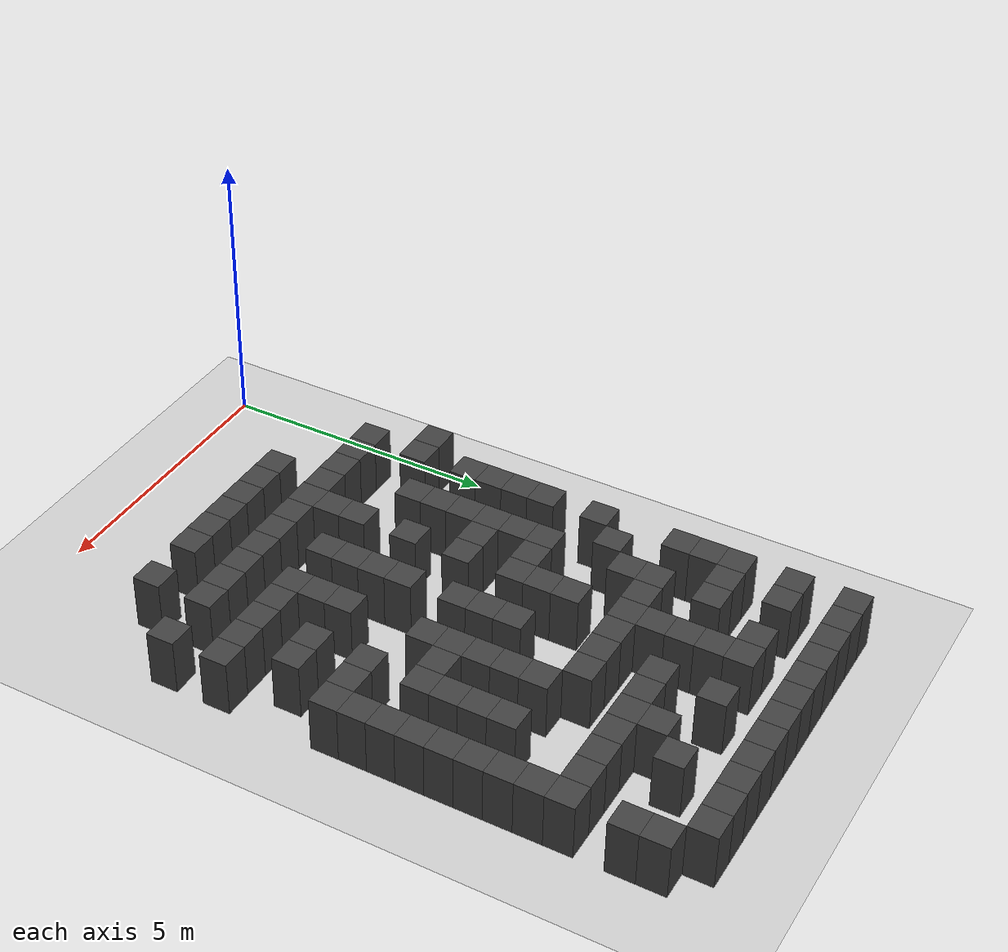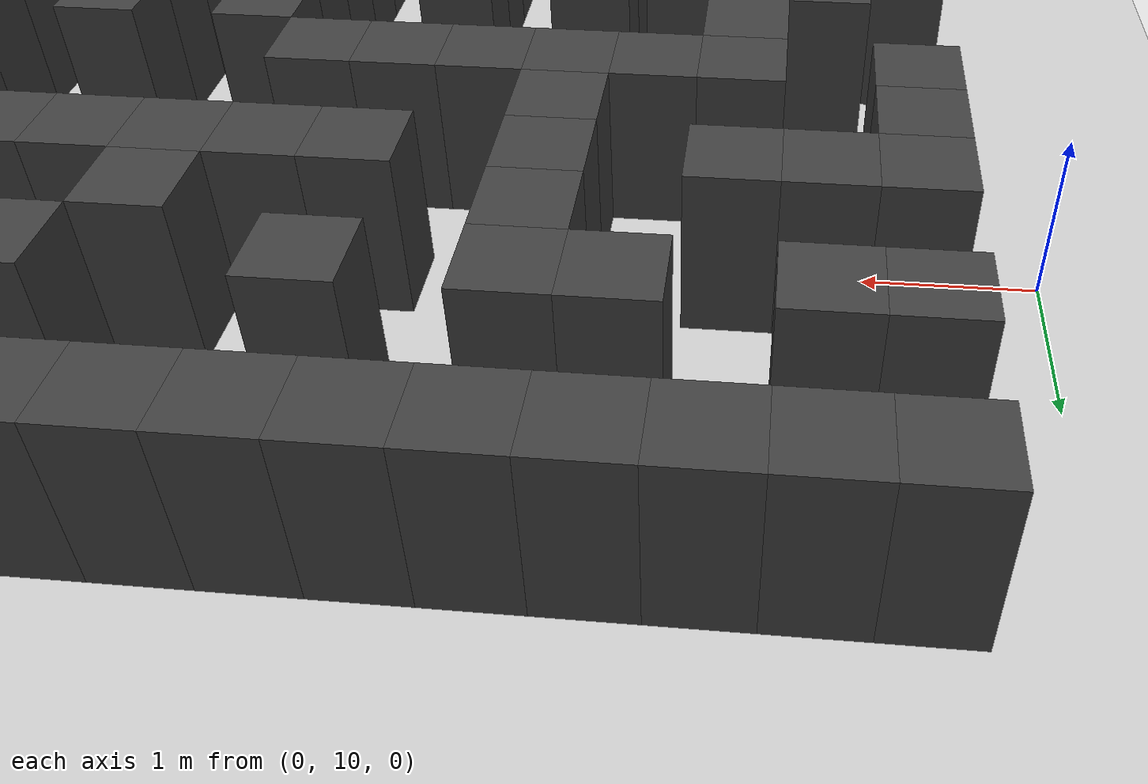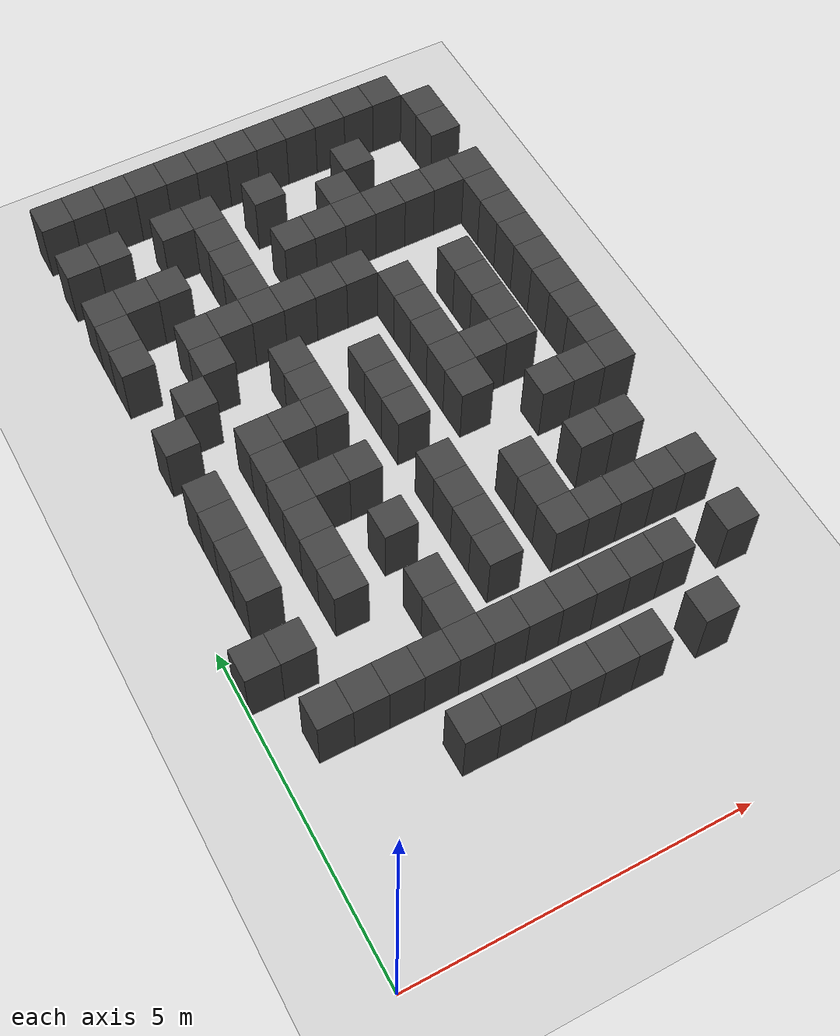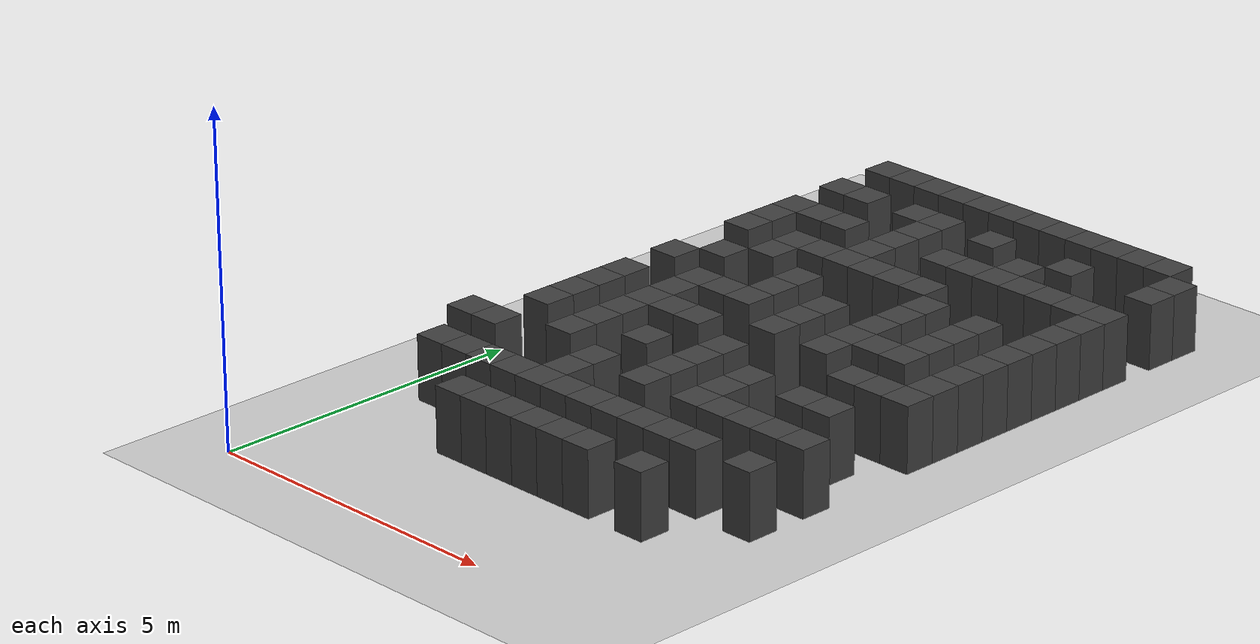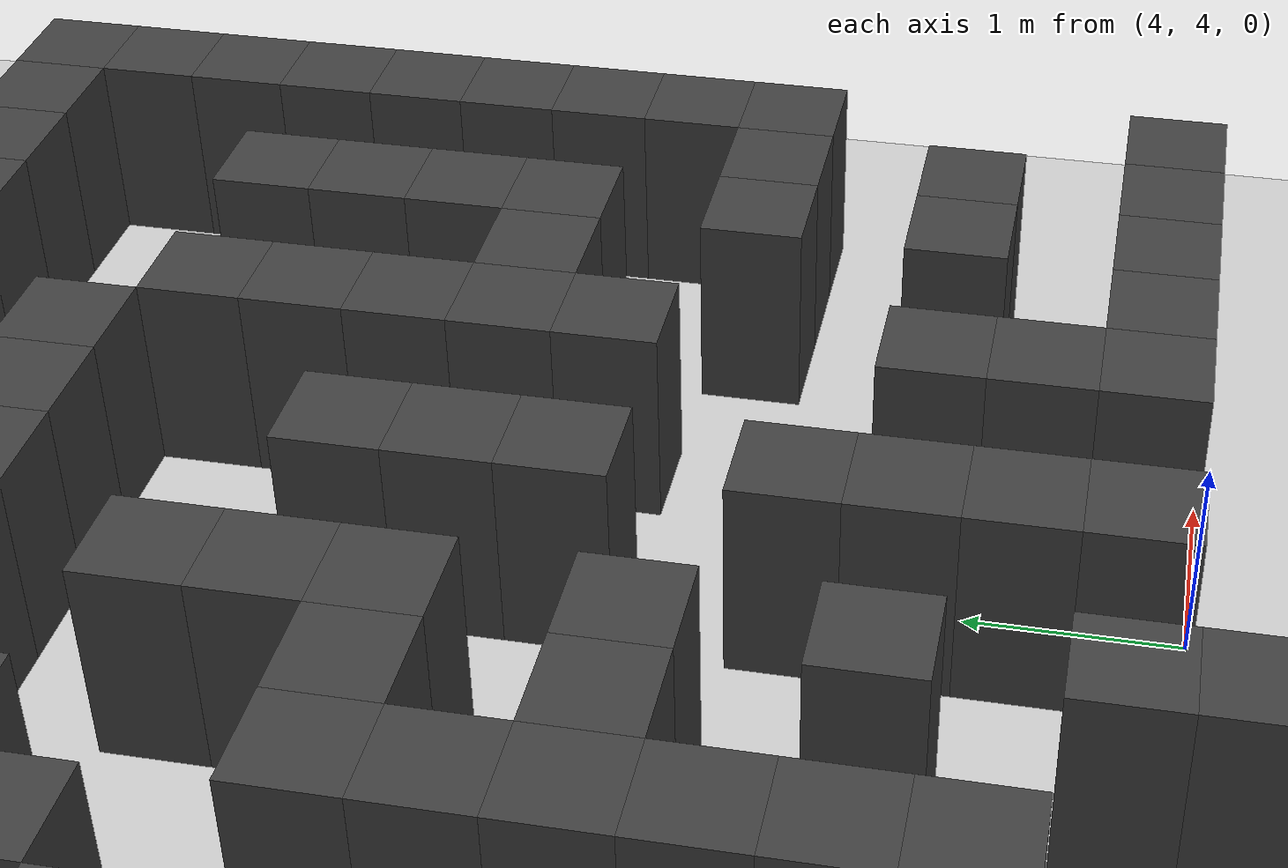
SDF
<sdf version="1.7">
 <world name="map_15293">
  <model name="ground_plane">
   <static>true</static>
   <link name="link">
    <collision name="collision">
     <geometry><plane><normal>0 0 1</normal><size>200 200</size></plane></geometry>
    </collision>
    <visual name="visual">
     <geometry><plane><normal>0 0 1</normal><size>200 200</size></plane></geometry>
     <material><ambient>0.8 0.8 0.8 1</ambient><diffuse>0.8 0.8 0.8 1</diffuse></material>
    </visual>
   </link>
  </model>
  <model name="maze_environment">
   <static>true</static>
   <link name="wall_26">
    <pose>0.750 12.250 0.500 0 0 0</pose>
    <collision name="col"><geometry><box><size>0.5 0.5 1.0</size></box></geometry></collision>
    <visual name="vis">
     <geometry><box><size>0.5 0.5 1.0</size></box></geometry>
     <material><ambient>0.15 0.15 0.15 1</ambient><diffuse>0.25 0.25 0.25 1</diffuse></material>
    </visual>
   </link>
   <link name="wall_27">
    <pose>1.250 12.250 0.500 0 0 0</pose>
    <collision name="col"><geometry><box><size>0.5 0.5 1.0</size></box></geometry></collision>
    <visual name="vis">
     <geometry><box><size>0.5 0.5 1.0</size></box></geometry>
     <material><ambient>0.15 0.15 0.15 1</ambient><diffuse>0.25 0.25 0.25 1</diffuse></material>
    </visual>
   </link>
   <link name="wall_28">
    <pose>1.750 12.250 0.500 0 0 0</pose>
    <collision name="col"><geometry><box><size>0.5 0.5 1.0</size></box></geometry></collision>
    <visual name="vis">
     <geometry><box><size>0.5 0.5 1.0</size></box></geometry>
     <material><ambient>0.15 0.15 0.15 1</ambient><diffuse>0.25 0.25 0.25 1</diffuse></material>
    </visual>
   </link>
   <link name="wall_29">
    <pose>2.250 12.250 0.500 0 0 0</pose>
    <collision name="col"><geometry><box><size>0.5 0.5 1.0</size></box></geometry></collision>
    <visual name="vis">
     <geometry><box><size>0.5 0.5 1.0</size></box></geometry>
     <material><ambient>0.15 0.15 0.15 1</ambient><diffuse>0.25 0.25 0.25 1</diffuse></material>
    </visual>
   </link>
   <link name="wall_30">
    <pose>2.750 12.250 0.500 0 0 0</pose>
    <collision name="col"><geometry><box><size>0.5 0.5 1.0</size></box></geometry></collision>
    <visual name="vis">
     <geometry><box><size>0.5 0.5 1.0</size></box></geometry>
     <material><ambient>0.15 0.15 0.15 1</ambient><diffuse>0.25 0.25 0.25 1</diffuse></material>
    </visual>
   </link>
   <link name="wall_31">
    <pose>3.250 12.250 0.500 0 0 0</pose>
    <collision name="col"><geometry><box><size>0.5 0.5 1.0</size></box></geometry></collision>
    <visual name="vis">
     <geometry><box><size>0.5 0.5 1.0</size></box></geometry>
     <material><ambient>0.15 0.15 0.15 1</ambient><diffuse>0.25 0.25 0.25 1</diffuse></material>
    </visual>
   </link>
   <link name="wall_32">
    <pose>3.750 12.250 0.500 0 0 0</pose>
    <collision name="col"><geometry><box><size>0.5 0.5 1.0</size></box></geometry></collision>
    <visual name="vis">
     <geometry><box><size>0.5 0.5 1.0</size></box></geometry>
     <material><ambient>0.15 0.15 0.15 1</ambient><diffuse>0.25 0.25 0.25 1</diffuse></material>
    </visual>
   </link>
   <link name="wall_33">
    <pose>4.250 12.250 0.500 0 0 0</pose>
    <collision name="col"><geometry><box><size>0.5 0.5 1.0</size></box></geometry></collision>
    <visual name="vis">
     <geometry><box><size>0.5 0.5 1.0</size></box></geometry>
     <material><ambient>0.15 0.15 0.15 1</ambient><diffuse>0.25 0.25 0.25 1</diffuse></material>
    </visual>
   </link>
   <link name="wall_34">
    <pose>4.750 12.250 0.500 0 0 0</pose>
    <collision name="col"><geometry><box><size>0.5 0.5 1.0</size></box></geometry></collision>
    <visual name="vis">
     <geometry><box><size>0.5 0.5 1.0</size></box></geometry>
     <material><ambient>0.15 0.15 0.15 1</ambient><diffuse>0.25 0.25 0.25 1</diffuse></material>
    </visual>
   </link>
   <link name="wall_35">
    <pose>5.250 12.250 0.500 0 0 0</pose>
    <collision name="col"><geometry><box><size>0.5 0.5 1.0</size></box></geometry></collision>
    <visual name="vis">
     <geometry><box><size>0.5 0.5 1.0</size></box></geometry>
     <material><ambient>0.15 0.15 0.15 1</ambient><diffuse>0.25 0.25 0.25 1</diffuse></material>
    </visual>
   </link>
   <link name="wall_36">
    <pose>5.750 12.250 0.500 0 0 0</pose>
    <collision name="col"><geometry><box><size>0.5 0.5 1.0</size></box></geometry></collision>
    <visual name="vis">
     <geometry><box><size>0.5 0.5 1.0</size></box></geometry>
     <material><ambient>0.15 0.15 0.15 1</ambient><diffuse>0.25 0.25 0.25 1</diffuse></material>
    </visual>
   </link>
   <link name="wall_37">
    <pose>6.250 12.250 0.500 0 0 0</pose>
    <collision name="col"><geometry><box><size>0.5 0.5 1.0</size></box></geometry></collision>
    <visual name="vis">
     <geometry><box><size>0.5 0.5 1.0</size></box></geometry>
     <material><ambient>0.15 0.15 0.15 1</ambient><diffuse>0.25 0.25 0.25 1</diffuse></material>
    </visual>
   </link>
   <link name="wall_55">
    <pose>6.750 11.750 0.500 0 0 0</pose>
    <collision name="col"><geometry><box><size>0.5 0.5 1.0</size></box></geometry></collision>
    <visual name="vis">
     <geometry><box><size>0.5 0.5 1.0</size></box></geometry>
     <material><ambient>0.15 0.15 0.15 1</ambient><diffuse>0.25 0.25 0.25 1</diffuse></material>
    </visual>
   </link>
   <link name="wall_74">
    <pose>0.750 11.250 0.500 0 0 0</pose>
    <collision name="col"><geometry><box><size>0.5 0.5 1.0</size></box></geometry></collision>
    <visual name="vis">
     <geometry><box><size>0.5 0.5 1.0</size></box></geometry>
     <material><ambient>0.15 0.15 0.15 1</ambient><diffuse>0.25 0.25 0.25 1</diffuse></material>
    </visual>
   </link>
   <link name="wall_75">
    <pose>1.250 11.250 0.500 0 0 0</pose>
    <collision name="col"><geometry><box><size>0.5 0.5 1.0</size></box></geometry></collision>
    <visual name="vis">
     <geometry><box><size>0.5 0.5 1.0</size></box></geometry>
     <material><ambient>0.15 0.15 0.15 1</ambient><diffuse>0.25 0.25 0.25 1</diffuse></material>
    </visual>
   </link>
   <link name="wall_76">
    <pose>2.250 11.250 0.500 0 0 0</pose>
    <collision name="col"><geometry><box><size>0.5 0.5 1.0</size></box></geometry></collision>
    <visual name="vis">
     <geometry><box><size>0.5 0.5 1.0</size></box></geometry>
     <material><ambient>0.15 0.15 0.15 1</ambient><diffuse>0.25 0.25 0.25 1</diffuse></material>
    </visual>
   </link>
   <link name="wall_77">
    <pose>2.750 11.250 0.500 0 0 0</pose>
    <collision name="col"><geometry><box><size>0.5 0.5 1.0</size></box></geometry></collision>
    <visual name="vis">
     <geometry><box><size>0.5 0.5 1.0</size></box></geometry>
     <material><ambient>0.15 0.15 0.15 1</ambient><diffuse>0.25 0.25 0.25 1</diffuse></material>
    </visual>
   </link>
   <link name="wall_78">
    <pose>3.750 11.250 0.500 0 0 0</pose>
    <collision name="col"><geometry><box><size>0.5 0.5 1.0</size></box></geometry></collision>
    <visual name="vis">
     <geometry><box><size>0.5 0.5 1.0</size></box></geometry>
     <material><ambient>0.15 0.15 0.15 1</ambient><diffuse>0.25 0.25 0.25 1</diffuse></material>
    </visual>
   </link>
   <link name="wall_79">
    <pose>5.250 11.250 0.500 0 0 0</pose>
    <collision name="col"><geometry><box><size>0.5 0.5 1.0</size></box></geometry></collision>
    <visual name="vis">
     <geometry><box><size>0.5 0.5 1.0</size></box></geometry>
     <material><ambient>0.15 0.15 0.15 1</ambient><diffuse>0.25 0.25 0.25 1</diffuse></material>
    </visual>
   </link>
   <link name="wall_80">
    <pose>6.750 11.250 0.500 0 0 0</pose>
    <collision name="col"><geometry><box><size>0.5 0.5 1.0</size></box></geometry></collision>
    <visual name="vis">
     <geometry><box><size>0.5 0.5 1.0</size></box></geometry>
     <material><ambient>0.15 0.15 0.15 1</ambient><diffuse>0.25 0.25 0.25 1</diffuse></material>
    </visual>
   </link>
   <link name="wall_95">
    <pose>2.750 10.750 0.500 0 0 0</pose>
    <collision name="col"><geometry><box><size>0.5 0.5 1.0</size></box></geometry></collision>
    <visual name="vis">
     <geometry><box><size>0.5 0.5 1.0</size></box></geometry>
     <material><ambient>0.15 0.15 0.15 1</ambient><diffuse>0.25 0.25 0.25 1</diffuse></material>
    </visual>
   </link>
   <link name="wall_96">
    <pose>4.750 10.750 0.500 0 0 0</pose>
    <collision name="col"><geometry><box><size>0.5 0.5 1.0</size></box></geometry></collision>
    <visual name="vis">
     <geometry><box><size>0.5 0.5 1.0</size></box></geometry>
     <material><ambient>0.15 0.15 0.15 1</ambient><diffuse>0.25 0.25 0.25 1</diffuse></material>
    </visual>
   </link>
   <link name="wall_116">
    <pose>0.750 10.250 0.500 0 0 0</pose>
    <collision name="col"><geometry><box><size>0.5 0.5 1.0</size></box></geometry></collision>
    <visual name="vis">
     <geometry><box><size>0.5 0.5 1.0</size></box></geometry>
     <material><ambient>0.15 0.15 0.15 1</ambient><diffuse>0.25 0.25 0.25 1</diffuse></material>
    </visual>
   </link>
   <link name="wall_117">
    <pose>1.250 10.250 0.500 0 0 0</pose>
    <collision name="col"><geometry><box><size>0.5 0.5 1.0</size></box></geometry></collision>
    <visual name="vis">
     <geometry><box><size>0.5 0.5 1.0</size></box></geometry>
     <material><ambient>0.15 0.15 0.15 1</ambient><diffuse>0.25 0.25 0.25 1</diffuse></material>
    </visual>
   </link>
   <link name="wall_118">
    <pose>1.750 10.250 0.500 0 0 0</pose>
    <collision name="col"><geometry><box><size>0.5 0.5 1.0</size></box></geometry></collision>
    <visual name="vis">
     <geometry><box><size>0.5 0.5 1.0</size></box></geometry>
     <material><ambient>0.15 0.15 0.15 1</ambient><diffuse>0.25 0.25 0.25 1</diffuse></material>
    </visual>
   </link>
   <link name="wall_119">
    <pose>2.750 10.250 0.500 0 0 0</pose>
    <collision name="col"><geometry><box><size>0.5 0.5 1.0</size></box></geometry></collision>
    <visual name="vis">
     <geometry><box><size>0.5 0.5 1.0</size></box></geometry>
     <material><ambient>0.15 0.15 0.15 1</ambient><diffuse>0.25 0.25 0.25 1</diffuse></material>
    </visual>
   </link>
   <link name="wall_120">
    <pose>3.750 10.250 0.500 0 0 0</pose>
    <collision name="col"><geometry><box><size>0.5 0.5 1.0</size></box></geometry></collision>
    <visual name="vis">
     <geometry><box><size>0.5 0.5 1.0</size></box></geometry>
     <material><ambient>0.15 0.15 0.15 1</ambient><diffuse>0.25 0.25 0.25 1</diffuse></material>
    </visual>
   </link>
   <link name="wall_121">
    <pose>4.250 10.250 0.500 0 0 0</pose>
    <collision name="col"><geometry><box><size>0.5 0.5 1.0</size></box></geometry></collision>
    <visual name="vis">
     <geometry><box><size>0.5 0.5 1.0</size></box></geometry>
     <material><ambient>0.15 0.15 0.15 1</ambient><diffuse>0.25 0.25 0.25 1</diffuse></material>
    </visual>
   </link>
   <link name="wall_122">
    <pose>4.750 10.250 0.500 0 0 0</pose>
    <collision name="col"><geometry><box><size>0.5 0.5 1.0</size></box></geometry></collision>
    <visual name="vis">
     <geometry><box><size>0.5 0.5 1.0</size></box></geometry>
     <material><ambient>0.15 0.15 0.15 1</ambient><diffuse>0.25 0.25 0.25 1</diffuse></material>
    </visual>
   </link>
   <link name="wall_123">
    <pose>5.250 10.250 0.500 0 0 0</pose>
    <collision name="col"><geometry><box><size>0.5 0.5 1.0</size></box></geometry></collision>
    <visual name="vis">
     <geometry><box><size>0.5 0.5 1.0</size></box></geometry>
     <material><ambient>0.15 0.15 0.15 1</ambient><diffuse>0.25 0.25 0.25 1</diffuse></material>
    </visual>
   </link>
   <link name="wall_124">
    <pose>5.750 10.250 0.500 0 0 0</pose>
    <collision name="col"><geometry><box><size>0.5 0.5 1.0</size></box></geometry></collision>
    <visual name="vis">
     <geometry><box><size>0.5 0.5 1.0</size></box></geometry>
     <material><ambient>0.15 0.15 0.15 1</ambient><diffuse>0.25 0.25 0.25 1</diffuse></material>
    </visual>
   </link>
   <link name="wall_125">
    <pose>6.250 10.250 0.500 0 0 0</pose>
    <collision name="col"><geometry><box><size>0.5 0.5 1.0</size></box></geometry></collision>
    <visual name="vis">
     <geometry><box><size>0.5 0.5 1.0</size></box></geometry>
     <material><ambient>0.15 0.15 0.15 1</ambient><diffuse>0.25 0.25 0.25 1</diffuse></material>
    </visual>
   </link>
   <link name="wall_126">
    <pose>6.750 10.250 0.500 0 0 0</pose>
    <collision name="col"><geometry><box><size>0.5 0.5 1.0</size></box></geometry></collision>
    <visual name="vis">
     <geometry><box><size>0.5 0.5 1.0</size></box></geometry>
     <material><ambient>0.15 0.15 0.15 1</ambient><diffuse>0.25 0.25 0.25 1</diffuse></material>
    </visual>
   </link>
   <link name="wall_139">
    <pose>0.750 9.750 0.500 0 0 0</pose>
    <collision name="col"><geometry><box><size>0.5 0.5 1.0</size></box></geometry></collision>
    <visual name="vis">
     <geometry><box><size>0.5 0.5 1.0</size></box></geometry>
     <material><ambient>0.15 0.15 0.15 1</ambient><diffuse>0.25 0.25 0.25 1</diffuse></material>
    </visual>
   </link>
   <link name="wall_140">
    <pose>2.750 9.750 0.500 0 0 0</pose>
    <collision name="col"><geometry><box><size>0.5 0.5 1.0</size></box></geometry></collision>
    <visual name="vis">
     <geometry><box><size>0.5 0.5 1.0</size></box></geometry>
     <material><ambient>0.15 0.15 0.15 1</ambient><diffuse>0.25 0.25 0.25 1</diffuse></material>
    </visual>
   </link>
   <link name="wall_141">
    <pose>6.750 9.750 0.500 0 0 0</pose>
    <collision name="col"><geometry><box><size>0.5 0.5 1.0</size></box></geometry></collision>
    <visual name="vis">
     <geometry><box><size>0.5 0.5 1.0</size></box></geometry>
     <material><ambient>0.15 0.15 0.15 1</ambient><diffuse>0.25 0.25 0.25 1</diffuse></material>
    </visual>
   </link>
   <link name="wall_163">
    <pose>0.750 9.250 0.500 0 0 0</pose>
    <collision name="col"><geometry><box><size>0.5 0.5 1.0</size></box></geometry></collision>
    <visual name="vis">
     <geometry><box><size>0.5 0.5 1.0</size></box></geometry>
     <material><ambient>0.15 0.15 0.15 1</ambient><diffuse>0.25 0.25 0.25 1</diffuse></material>
    </visual>
   </link>
   <link name="wall_164">
    <pose>1.750 9.250 0.500 0 0 0</pose>
    <collision name="col"><geometry><box><size>0.5 0.5 1.0</size></box></geometry></collision>
    <visual name="vis">
     <geometry><box><size>0.5 0.5 1.0</size></box></geometry>
     <material><ambient>0.15 0.15 0.15 1</ambient><diffuse>0.25 0.25 0.25 1</diffuse></material>
    </visual>
   </link>
   <link name="wall_165">
    <pose>2.250 9.250 0.500 0 0 0</pose>
    <collision name="col"><geometry><box><size>0.5 0.5 1.0</size></box></geometry></collision>
    <visual name="vis">
     <geometry><box><size>0.5 0.5 1.0</size></box></geometry>
     <material><ambient>0.15 0.15 0.15 1</ambient><diffuse>0.25 0.25 0.25 1</diffuse></material>
    </visual>
   </link>
   <link name="wall_166">
    <pose>2.750 9.250 0.500 0 0 0</pose>
    <collision name="col"><geometry><box><size>0.5 0.5 1.0</size></box></geometry></collision>
    <visual name="vis">
     <geometry><box><size>0.5 0.5 1.0</size></box></geometry>
     <material><ambient>0.15 0.15 0.15 1</ambient><diffuse>0.25 0.25 0.25 1</diffuse></material>
    </visual>
   </link>
   <link name="wall_167">
    <pose>3.250 9.250 0.500 0 0 0</pose>
    <collision name="col"><geometry><box><size>0.5 0.5 1.0</size></box></geometry></collision>
    <visual name="vis">
     <geometry><box><size>0.5 0.5 1.0</size></box></geometry>
     <material><ambient>0.15 0.15 0.15 1</ambient><diffuse>0.25 0.25 0.25 1</diffuse></material>
    </visual>
   </link>
   <link name="wall_168">
    <pose>3.750 9.250 0.500 0 0 0</pose>
    <collision name="col"><geometry><box><size>0.5 0.5 1.0</size></box></geometry></collision>
    <visual name="vis">
     <geometry><box><size>0.5 0.5 1.0</size></box></geometry>
     <material><ambient>0.15 0.15 0.15 1</ambient><diffuse>0.25 0.25 0.25 1</diffuse></material>
    </visual>
   </link>
   <link name="wall_169">
    <pose>4.250 9.250 0.500 0 0 0</pose>
    <collision name="col"><geometry><box><size>0.5 0.5 1.0</size></box></geometry></collision>
    <visual name="vis">
     <geometry><box><size>0.5 0.5 1.0</size></box></geometry>
     <material><ambient>0.15 0.15 0.15 1</ambient><diffuse>0.25 0.25 0.25 1</diffuse></material>
    </visual>
   </link>
   <link name="wall_170">
    <pose>6.750 9.250 0.500 0 0 0</pose>
    <collision name="col"><geometry><box><size>0.5 0.5 1.0</size></box></geometry></collision>
    <visual name="vis">
     <geometry><box><size>0.5 0.5 1.0</size></box></geometry>
     <material><ambient>0.15 0.15 0.15 1</ambient><diffuse>0.25 0.25 0.25 1</diffuse></material>
    </visual>
   </link>
   <link name="wall_184">
    <pose>1.750 8.750 0.500 0 0 0</pose>
    <collision name="col"><geometry><box><size>0.5 0.5 1.0</size></box></geometry></collision>
    <visual name="vis">
     <geometry><box><size>0.5 0.5 1.0</size></box></geometry>
     <material><ambient>0.15 0.15 0.15 1</ambient><diffuse>0.25 0.25 0.25 1</diffuse></material>
    </visual>
   </link>
   <link name="wall_185">
    <pose>4.750 8.750 0.500 0 0 0</pose>
    <collision name="col"><geometry><box><size>0.5 0.5 1.0</size></box></geometry></collision>
    <visual name="vis">
     <geometry><box><size>0.5 0.5 1.0</size></box></geometry>
     <material><ambient>0.15 0.15 0.15 1</ambient><diffuse>0.25 0.25 0.25 1</diffuse></material>
    </visual>
   </link>
   <link name="wall_186">
    <pose>5.750 8.750 0.500 0 0 0</pose>
    <collision name="col"><geometry><box><size>0.5 0.5 1.0</size></box></geometry></collision>
    <visual name="vis">
     <geometry><box><size>0.5 0.5 1.0</size></box></geometry>
     <material><ambient>0.15 0.15 0.15 1</ambient><diffuse>0.25 0.25 0.25 1</diffuse></material>
    </visual>
   </link>
   <link name="wall_187">
    <pose>6.750 8.750 0.500 0 0 0</pose>
    <collision name="col"><geometry><box><size>0.5 0.5 1.0</size></box></geometry></collision>
    <visual name="vis">
     <geometry><box><size>0.5 0.5 1.0</size></box></geometry>
     <material><ambient>0.15 0.15 0.15 1</ambient><diffuse>0.25 0.25 0.25 1</diffuse></material>
    </visual>
   </link>
   <link name="wall_211">
    <pose>1.250 8.250 0.500 0 0 0</pose>
    <collision name="col"><geometry><box><size>0.5 0.5 1.0</size></box></geometry></collision>
    <visual name="vis">
     <geometry><box><size>0.5 0.5 1.0</size></box></geometry>
     <material><ambient>0.15 0.15 0.15 1</ambient><diffuse>0.25 0.25 0.25 1</diffuse></material>
    </visual>
   </link>
   <link name="wall_212">
    <pose>2.750 8.250 0.500 0 0 0</pose>
    <collision name="col"><geometry><box><size>0.5 0.5 1.0</size></box></geometry></collision>
    <visual name="vis">
     <geometry><box><size>0.5 0.5 1.0</size></box></geometry>
     <material><ambient>0.15 0.15 0.15 1</ambient><diffuse>0.25 0.25 0.25 1</diffuse></material>
    </visual>
   </link>
   <link name="wall_213">
    <pose>4.750 8.250 0.500 0 0 0</pose>
    <collision name="col"><geometry><box><size>0.5 0.5 1.0</size></box></geometry></collision>
    <visual name="vis">
     <geometry><box><size>0.5 0.5 1.0</size></box></geometry>
     <material><ambient>0.15 0.15 0.15 1</ambient><diffuse>0.25 0.25 0.25 1</diffuse></material>
    </visual>
   </link>
   <link name="wall_214">
    <pose>5.750 8.250 0.500 0 0 0</pose>
    <collision name="col"><geometry><box><size>0.5 0.5 1.0</size></box></geometry></collision>
    <visual name="vis">
     <geometry><box><size>0.5 0.5 1.0</size></box></geometry>
     <material><ambient>0.15 0.15 0.15 1</ambient><diffuse>0.25 0.25 0.25 1</diffuse></material>
    </visual>
   </link>
   <link name="wall_215">
    <pose>6.750 8.250 0.500 0 0 0</pose>
    <collision name="col"><geometry><box><size>0.5 0.5 1.0</size></box></geometry></collision>
    <visual name="vis">
     <geometry><box><size>0.5 0.5 1.0</size></box></geometry>
     <material><ambient>0.15 0.15 0.15 1</ambient><diffuse>0.25 0.25 0.25 1</diffuse></material>
    </visual>
   </link>
   <link name="wall_228">
    <pose>0.750 7.750 0.500 0 0 0</pose>
    <collision name="col"><geometry><box><size>0.5 0.5 1.0</size></box></geometry></collision>
    <visual name="vis">
     <geometry><box><size>0.5 0.5 1.0</size></box></geometry>
     <material><ambient>0.15 0.15 0.15 1</ambient><diffuse>0.25 0.25 0.25 1</diffuse></material>
    </visual>
   </link>
   <link name="wall_229">
    <pose>2.750 7.750 0.500 0 0 0</pose>
    <collision name="col"><geometry><box><size>0.5 0.5 1.0</size></box></geometry></collision>
    <visual name="vis">
     <geometry><box><size>0.5 0.5 1.0</size></box></geometry>
     <material><ambient>0.15 0.15 0.15 1</ambient><diffuse>0.25 0.25 0.25 1</diffuse></material>
    </visual>
   </link>
   <link name="wall_230">
    <pose>3.750 7.750 0.500 0 0 0</pose>
    <collision name="col"><geometry><box><size>0.5 0.5 1.0</size></box></geometry></collision>
    <visual name="vis">
     <geometry><box><size>0.5 0.5 1.0</size></box></geometry>
     <material><ambient>0.15 0.15 0.15 1</ambient><diffuse>0.25 0.25 0.25 1</diffuse></material>
    </visual>
   </link>
   <link name="wall_231">
    <pose>4.750 7.750 0.500 0 0 0</pose>
    <collision name="col"><geometry><box><size>0.5 0.5 1.0</size></box></geometry></collision>
    <visual name="vis">
     <geometry><box><size>0.5 0.5 1.0</size></box></geometry>
     <material><ambient>0.15 0.15 0.15 1</ambient><diffuse>0.25 0.25 0.25 1</diffuse></material>
    </visual>
   </link>
   <link name="wall_232">
    <pose>5.750 7.750 0.500 0 0 0</pose>
    <collision name="col"><geometry><box><size>0.5 0.5 1.0</size></box></geometry></collision>
    <visual name="vis">
     <geometry><box><size>0.5 0.5 1.0</size></box></geometry>
     <material><ambient>0.15 0.15 0.15 1</ambient><diffuse>0.25 0.25 0.25 1</diffuse></material>
    </visual>
   </link>
   <link name="wall_233">
    <pose>6.750 7.750 0.500 0 0 0</pose>
    <collision name="col"><geometry><box><size>0.5 0.5 1.0</size></box></geometry></collision>
    <visual name="vis">
     <geometry><box><size>0.5 0.5 1.0</size></box></geometry>
     <material><ambient>0.15 0.15 0.15 1</ambient><diffuse>0.25 0.25 0.25 1</diffuse></material>
    </visual>
   </link>
   <link name="wall_254">
    <pose>1.750 7.250 0.500 0 0 0</pose>
    <collision name="col"><geometry><box><size>0.5 0.5 1.0</size></box></geometry></collision>
    <visual name="vis">
     <geometry><box><size>0.5 0.5 1.0</size></box></geometry>
     <material><ambient>0.15 0.15 0.15 1</ambient><diffuse>0.25 0.25 0.25 1</diffuse></material>
    </visual>
   </link>
   <link name="wall_255">
    <pose>2.250 7.250 0.500 0 0 0</pose>
    <collision name="col"><geometry><box><size>0.5 0.5 1.0</size></box></geometry></collision>
    <visual name="vis">
     <geometry><box><size>0.5 0.5 1.0</size></box></geometry>
     <material><ambient>0.15 0.15 0.15 1</ambient><diffuse>0.25 0.25 0.25 1</diffuse></material>
    </visual>
   </link>
   <link name="wall_256">
    <pose>2.750 7.250 0.500 0 0 0</pose>
    <collision name="col"><geometry><box><size>0.5 0.5 1.0</size></box></geometry></collision>
    <visual name="vis">
     <geometry><box><size>0.5 0.5 1.0</size></box></geometry>
     <material><ambient>0.15 0.15 0.15 1</ambient><diffuse>0.25 0.25 0.25 1</diffuse></material>
    </visual>
   </link>
   <link name="wall_257">
    <pose>3.750 7.250 0.500 0 0 0</pose>
    <collision name="col"><geometry><box><size>0.5 0.5 1.0</size></box></geometry></collision>
    <visual name="vis">
     <geometry><box><size>0.5 0.5 1.0</size></box></geometry>
     <material><ambient>0.15 0.15 0.15 1</ambient><diffuse>0.25 0.25 0.25 1</diffuse></material>
    </visual>
   </link>
   <link name="wall_258">
    <pose>4.750 7.250 0.500 0 0 0</pose>
    <collision name="col"><geometry><box><size>0.5 0.5 1.0</size></box></geometry></collision>
    <visual name="vis">
     <geometry><box><size>0.5 0.5 1.0</size></box></geometry>
     <material><ambient>0.15 0.15 0.15 1</ambient><diffuse>0.25 0.25 0.25 1</diffuse></material>
    </visual>
   </link>
   <link name="wall_259">
    <pose>5.250 7.250 0.500 0 0 0</pose>
    <collision name="col"><geometry><box><size>0.5 0.5 1.0</size></box></geometry></collision>
    <visual name="vis">
     <geometry><box><size>0.5 0.5 1.0</size></box></geometry>
     <material><ambient>0.15 0.15 0.15 1</ambient><diffuse>0.25 0.25 0.25 1</diffuse></material>
    </visual>
   </link>
   <link name="wall_260">
    <pose>5.750 7.250 0.500 0 0 0</pose>
    <collision name="col"><geometry><box><size>0.5 0.5 1.0</size></box></geometry></collision>
    <visual name="vis">
     <geometry><box><size>0.5 0.5 1.0</size></box></geometry>
     <material><ambient>0.15 0.15 0.15 1</ambient><diffuse>0.25 0.25 0.25 1</diffuse></material>
    </visual>
   </link>
   <link name="wall_261">
    <pose>6.750 7.250 0.500 0 0 0</pose>
    <collision name="col"><geometry><box><size>0.5 0.5 1.0</size></box></geometry></collision>
    <visual name="vis">
     <geometry><box><size>0.5 0.5 1.0</size></box></geometry>
     <material><ambient>0.15 0.15 0.15 1</ambient><diffuse>0.25 0.25 0.25 1</diffuse></material>
    </visual>
   </link>
   <link name="wall_274">
    <pose>0.750 6.750 0.500 0 0 0</pose>
    <collision name="col"><geometry><box><size>0.5 0.5 1.0</size></box></geometry></collision>
    <visual name="vis">
     <geometry><box><size>0.5 0.5 1.0</size></box></geometry>
     <material><ambient>0.15 0.15 0.15 1</ambient><diffuse>0.25 0.25 0.25 1</diffuse></material>
    </visual>
   </link>
   <link name="wall_275">
    <pose>1.750 6.750 0.500 0 0 0</pose>
    <collision name="col"><geometry><box><size>0.5 0.5 1.0</size></box></geometry></collision>
    <visual name="vis">
     <geometry><box><size>0.5 0.5 1.0</size></box></geometry>
     <material><ambient>0.15 0.15 0.15 1</ambient><diffuse>0.25 0.25 0.25 1</diffuse></material>
    </visual>
   </link>
   <link name="wall_276">
    <pose>3.750 6.750 0.500 0 0 0</pose>
    <collision name="col"><geometry><box><size>0.5 0.5 1.0</size></box></geometry></collision>
    <visual name="vis">
     <geometry><box><size>0.5 0.5 1.0</size></box></geometry>
     <material><ambient>0.15 0.15 0.15 1</ambient><diffuse>0.25 0.25 0.25 1</diffuse></material>
    </visual>
   </link>
   <link name="wall_277">
    <pose>4.750 6.750 0.500 0 0 0</pose>
    <collision name="col"><geometry><box><size>0.5 0.5 1.0</size></box></geometry></collision>
    <visual name="vis">
     <geometry><box><size>0.5 0.5 1.0</size></box></geometry>
     <material><ambient>0.15 0.15 0.15 1</ambient><diffuse>0.25 0.25 0.25 1</diffuse></material>
    </visual>
   </link>
   <link name="wall_278">
    <pose>6.750 6.750 0.500 0 0 0</pose>
    <collision name="col"><geometry><box><size>0.5 0.5 1.0</size></box></geometry></collision>
    <visual name="vis">
     <geometry><box><size>0.5 0.5 1.0</size></box></geometry>
     <material><ambient>0.15 0.15 0.15 1</ambient><diffuse>0.25 0.25 0.25 1</diffuse></material>
    </visual>
   </link>
   <link name="wall_303">
    <pose>0.750 6.250 0.500 0 0 0</pose>
    <collision name="col"><geometry><box><size>0.5 0.5 1.0</size></box></geometry></collision>
    <visual name="vis">
     <geometry><box><size>0.5 0.5 1.0</size></box></geometry>
     <material><ambient>0.15 0.15 0.15 1</ambient><diffuse>0.25 0.25 0.25 1</diffuse></material>
    </visual>
   </link>
   <link name="wall_304">
    <pose>1.750 6.250 0.500 0 0 0</pose>
    <collision name="col"><geometry><box><size>0.5 0.5 1.0</size></box></geometry></collision>
    <visual name="vis">
     <geometry><box><size>0.5 0.5 1.0</size></box></geometry>
     <material><ambient>0.15 0.15 0.15 1</ambient><diffuse>0.25 0.25 0.25 1</diffuse></material>
    </visual>
   </link>
   <link name="wall_305">
    <pose>2.250 6.250 0.500 0 0 0</pose>
    <collision name="col"><geometry><box><size>0.5 0.5 1.0</size></box></geometry></collision>
    <visual name="vis">
     <geometry><box><size>0.5 0.5 1.0</size></box></geometry>
     <material><ambient>0.15 0.15 0.15 1</ambient><diffuse>0.25 0.25 0.25 1</diffuse></material>
    </visual>
   </link>
   <link name="wall_306">
    <pose>2.750 6.250 0.500 0 0 0</pose>
    <collision name="col"><geometry><box><size>0.5 0.5 1.0</size></box></geometry></collision>
    <visual name="vis">
     <geometry><box><size>0.5 0.5 1.0</size></box></geometry>
     <material><ambient>0.15 0.15 0.15 1</ambient><diffuse>0.25 0.25 0.25 1</diffuse></material>
    </visual>
   </link>
   <link name="wall_307">
    <pose>5.750 6.250 0.500 0 0 0</pose>
    <collision name="col"><geometry><box><size>0.5 0.5 1.0</size></box></geometry></collision>
    <visual name="vis">
     <geometry><box><size>0.5 0.5 1.0</size></box></geometry>
     <material><ambient>0.15 0.15 0.15 1</ambient><diffuse>0.25 0.25 0.25 1</diffuse></material>
    </visual>
   </link>
   <link name="wall_308">
    <pose>6.250 6.250 0.500 0 0 0</pose>
    <collision name="col"><geometry><box><size>0.5 0.5 1.0</size></box></geometry></collision>
    <visual name="vis">
     <geometry><box><size>0.5 0.5 1.0</size></box></geometry>
     <material><ambient>0.15 0.15 0.15 1</ambient><diffuse>0.25 0.25 0.25 1</diffuse></material>
    </visual>
   </link>
   <link name="wall_309">
    <pose>6.750 6.250 0.500 0 0 0</pose>
    <collision name="col"><geometry><box><size>0.5 0.5 1.0</size></box></geometry></collision>
    <visual name="vis">
     <geometry><box><size>0.5 0.5 1.0</size></box></geometry>
     <material><ambient>0.15 0.15 0.15 1</ambient><diffuse>0.25 0.25 0.25 1</diffuse></material>
    </visual>
   </link>
   <link name="wall_322">
    <pose>0.750 5.750 0.500 0 0 0</pose>
    <collision name="col"><geometry><box><size>0.5 0.5 1.0</size></box></geometry></collision>
    <visual name="vis">
     <geometry><box><size>0.5 0.5 1.0</size></box></geometry>
     <material><ambient>0.15 0.15 0.15 1</ambient><diffuse>0.25 0.25 0.25 1</diffuse></material>
    </visual>
   </link>
   <link name="wall_323">
    <pose>1.750 5.750 0.500 0 0 0</pose>
    <collision name="col"><geometry><box><size>0.5 0.5 1.0</size></box></geometry></collision>
    <visual name="vis">
     <geometry><box><size>0.5 0.5 1.0</size></box></geometry>
     <material><ambient>0.15 0.15 0.15 1</ambient><diffuse>0.25 0.25 0.25 1</diffuse></material>
    </visual>
   </link>
   <link name="wall_324">
    <pose>3.750 5.750 0.500 0 0 0</pose>
    <collision name="col"><geometry><box><size>0.5 0.5 1.0</size></box></geometry></collision>
    <visual name="vis">
     <geometry><box><size>0.5 0.5 1.0</size></box></geometry>
     <material><ambient>0.15 0.15 0.15 1</ambient><diffuse>0.25 0.25 0.25 1</diffuse></material>
    </visual>
   </link>
   <link name="wall_349">
    <pose>0.750 5.250 0.500 0 0 0</pose>
    <collision name="col"><geometry><box><size>0.5 0.5 1.0</size></box></geometry></collision>
    <visual name="vis">
     <geometry><box><size>0.5 0.5 1.0</size></box></geometry>
     <material><ambient>0.15 0.15 0.15 1</ambient><diffuse>0.25 0.25 0.25 1</diffuse></material>
    </visual>
   </link>
   <link name="wall_350">
    <pose>1.750 5.250 0.500 0 0 0</pose>
    <collision name="col"><geometry><box><size>0.5 0.5 1.0</size></box></geometry></collision>
    <visual name="vis">
     <geometry><box><size>0.5 0.5 1.0</size></box></geometry>
     <material><ambient>0.15 0.15 0.15 1</ambient><diffuse>0.25 0.25 0.25 1</diffuse></material>
    </visual>
   </link>
   <link name="wall_351">
    <pose>2.750 5.250 0.500 0 0 0</pose>
    <collision name="col"><geometry><box><size>0.5 0.5 1.0</size></box></geometry></collision>
    <visual name="vis">
     <geometry><box><size>0.5 0.5 1.0</size></box></geometry>
     <material><ambient>0.15 0.15 0.15 1</ambient><diffuse>0.25 0.25 0.25 1</diffuse></material>
    </visual>
   </link>
   <link name="wall_352">
    <pose>3.750 5.250 0.500 0 0 0</pose>
    <collision name="col"><geometry><box><size>0.5 0.5 1.0</size></box></geometry></collision>
    <visual name="vis">
     <geometry><box><size>0.5 0.5 1.0</size></box></geometry>
     <material><ambient>0.15 0.15 0.15 1</ambient><diffuse>0.25 0.25 0.25 1</diffuse></material>
    </visual>
   </link>
   <link name="wall_353">
    <pose>4.750 5.250 0.500 0 0 0</pose>
    <collision name="col"><geometry><box><size>0.5 0.5 1.0</size></box></geometry></collision>
    <visual name="vis">
     <geometry><box><size>0.5 0.5 1.0</size></box></geometry>
     <material><ambient>0.15 0.15 0.15 1</ambient><diffuse>0.25 0.25 0.25 1</diffuse></material>
    </visual>
   </link>
   <link name="wall_354">
    <pose>5.750 5.250 0.500 0 0 0</pose>
    <collision name="col"><geometry><box><size>0.5 0.5 1.0</size></box></geometry></collision>
    <visual name="vis">
     <geometry><box><size>0.5 0.5 1.0</size></box></geometry>
     <material><ambient>0.15 0.15 0.15 1</ambient><diffuse>0.25 0.25 0.25 1</diffuse></material>
    </visual>
   </link>
   <link name="wall_355">
    <pose>6.250 5.250 0.500 0 0 0</pose>
    <collision name="col"><geometry><box><size>0.5 0.5 1.0</size></box></geometry></collision>
    <visual name="vis">
     <geometry><box><size>0.5 0.5 1.0</size></box></geometry>
     <material><ambient>0.15 0.15 0.15 1</ambient><diffuse>0.25 0.25 0.25 1</diffuse></material>
    </visual>
   </link>
   <link name="wall_368">
    <pose>1.750 4.750 0.500 0 0 0</pose>
    <collision name="col"><geometry><box><size>0.5 0.5 1.0</size></box></geometry></collision>
    <visual name="vis">
     <geometry><box><size>0.5 0.5 1.0</size></box></geometry>
     <material><ambient>0.15 0.15 0.15 1</ambient><diffuse>0.25 0.25 0.25 1</diffuse></material>
    </visual>
   </link>
   <link name="wall_369">
    <pose>3.750 4.750 0.500 0 0 0</pose>
    <collision name="col"><geometry><box><size>0.5 0.5 1.0</size></box></geometry></collision>
    <visual name="vis">
     <geometry><box><size>0.5 0.5 1.0</size></box></geometry>
     <material><ambient>0.15 0.15 0.15 1</ambient><diffuse>0.25 0.25 0.25 1</diffuse></material>
    </visual>
   </link>
   <link name="wall_370">
    <pose>4.750 4.750 0.500 0 0 0</pose>
    <collision name="col"><geometry><box><size>0.5 0.5 1.0</size></box></geometry></collision>
    <visual name="vis">
     <geometry><box><size>0.5 0.5 1.0</size></box></geometry>
     <material><ambient>0.15 0.15 0.15 1</ambient><diffuse>0.25 0.25 0.25 1</diffuse></material>
    </visual>
   </link>
   <link name="wall_394">
    <pose>0.250 4.250 0.500 0 0 0</pose>
    <collision name="col"><geometry><box><size>0.5 0.5 1.0</size></box></geometry></collision>
    <visual name="vis">
     <geometry><box><size>0.5 0.5 1.0</size></box></geometry>
     <material><ambient>0.15 0.15 0.15 1</ambient><diffuse>0.25 0.25 0.25 1</diffuse></material>
    </visual>
   </link>
   <link name="wall_395">
    <pose>0.750 4.250 0.500 0 0 0</pose>
    <collision name="col"><geometry><box><size>0.5 0.5 1.0</size></box></geometry></collision>
    <visual name="vis">
     <geometry><box><size>0.5 0.5 1.0</size></box></geometry>
     <material><ambient>0.15 0.15 0.15 1</ambient><diffuse>0.25 0.25 0.25 1</diffuse></material>
    </visual>
   </link>
   <link name="wall_396">
    <pose>2.750 4.250 0.500 0 0 0</pose>
    <collision name="col"><geometry><box><size>0.5 0.5 1.0</size></box></geometry></collision>
    <visual name="vis">
     <geometry><box><size>0.5 0.5 1.0</size></box></geometry>
     <material><ambient>0.15 0.15 0.15 1</ambient><diffuse>0.25 0.25 0.25 1</diffuse></material>
    </visual>
   </link>
   <link name="wall_397">
    <pose>3.750 4.250 0.500 0 0 0</pose>
    <collision name="col"><geometry><box><size>0.5 0.5 1.0</size></box></geometry></collision>
    <visual name="vis">
     <geometry><box><size>0.5 0.5 1.0</size></box></geometry>
     <material><ambient>0.15 0.15 0.15 1</ambient><diffuse>0.25 0.25 0.25 1</diffuse></material>
    </visual>
   </link>
   <link name="wall_398">
    <pose>4.750 4.250 0.500 0 0 0</pose>
    <collision name="col"><geometry><box><size>0.5 0.5 1.0</size></box></geometry></collision>
    <visual name="vis">
     <geometry><box><size>0.5 0.5 1.0</size></box></geometry>
     <material><ambient>0.15 0.15 0.15 1</ambient><diffuse>0.25 0.25 0.25 1</diffuse></material>
    </visual>
   </link>
   <link name="wall_399">
    <pose>5.250 4.250 0.500 0 0 0</pose>
    <collision name="col"><geometry><box><size>0.5 0.5 1.0</size></box></geometry></collision>
    <visual name="vis">
     <geometry><box><size>0.5 0.5 1.0</size></box></geometry>
     <material><ambient>0.15 0.15 0.15 1</ambient><diffuse>0.25 0.25 0.25 1</diffuse></material>
    </visual>
   </link>
   <link name="wall_400">
    <pose>5.750 4.250 0.500 0 0 0</pose>
    <collision name="col"><geometry><box><size>0.5 0.5 1.0</size></box></geometry></collision>
    <visual name="vis">
     <geometry><box><size>0.5 0.5 1.0</size></box></geometry>
     <material><ambient>0.15 0.15 0.15 1</ambient><diffuse>0.25 0.25 0.25 1</diffuse></material>
    </visual>
   </link>
   <link name="wall_401">
    <pose>6.250 4.250 0.500 0 0 0</pose>
    <collision name="col"><geometry><box><size>0.5 0.5 1.0</size></box></geometry></collision>
    <visual name="vis">
     <geometry><box><size>0.5 0.5 1.0</size></box></geometry>
     <material><ambient>0.15 0.15 0.15 1</ambient><diffuse>0.25 0.25 0.25 1</diffuse></material>
    </visual>
   </link>
   <link name="wall_402">
    <pose>6.750 4.250 0.500 0 0 0</pose>
    <collision name="col"><geometry><box><size>0.5 0.5 1.0</size></box></geometry></collision>
    <visual name="vis">
     <geometry><box><size>0.5 0.5 1.0</size></box></geometry>
     <material><ambient>0.15 0.15 0.15 1</ambient><diffuse>0.25 0.25 0.25 1</diffuse></material>
    </visual>
   </link>
   <link name="wall_415">
    <pose>2.750 3.750 0.500 0 0 0</pose>
    <collision name="col"><geometry><box><size>0.5 0.5 1.0</size></box></geometry></collision>
    <visual name="vis">
     <geometry><box><size>0.5 0.5 1.0</size></box></geometry>
     <material><ambient>0.15 0.15 0.15 1</ambient><diffuse>0.25 0.25 0.25 1</diffuse></material>
    </visual>
   </link>
   <link name="wall_438">
    <pose>0.750 3.250 0.500 0 0 0</pose>
    <collision name="col"><geometry><box><size>0.5 0.5 1.0</size></box></geometry></collision>
    <visual name="vis">
     <geometry><box><size>0.5 0.5 1.0</size></box></geometry>
     <material><ambient>0.15 0.15 0.15 1</ambient><diffuse>0.25 0.25 0.25 1</diffuse></material>
    </visual>
   </link>
   <link name="wall_439">
    <pose>1.250 3.250 0.500 0 0 0</pose>
    <collision name="col"><geometry><box><size>0.5 0.5 1.0</size></box></geometry></collision>
    <visual name="vis">
     <geometry><box><size>0.5 0.5 1.0</size></box></geometry>
     <material><ambient>0.15 0.15 0.15 1</ambient><diffuse>0.25 0.25 0.25 1</diffuse></material>
    </visual>
   </link>
   <link name="wall_440">
    <pose>1.750 3.250 0.500 0 0 0</pose>
    <collision name="col"><geometry><box><size>0.5 0.5 1.0</size></box></geometry></collision>
    <visual name="vis">
     <geometry><box><size>0.5 0.5 1.0</size></box></geometry>
     <material><ambient>0.15 0.15 0.15 1</ambient><diffuse>0.25 0.25 0.25 1</diffuse></material>
    </visual>
   </link>
   <link name="wall_441">
    <pose>2.250 3.250 0.500 0 0 0</pose>
    <collision name="col"><geometry><box><size>0.5 0.5 1.0</size></box></geometry></collision>
    <visual name="vis">
     <geometry><box><size>0.5 0.5 1.0</size></box></geometry>
     <material><ambient>0.15 0.15 0.15 1</ambient><diffuse>0.25 0.25 0.25 1</diffuse></material>
    </visual>
   </link>
   <link name="wall_442">
    <pose>2.750 3.250 0.500 0 0 0</pose>
    <collision name="col"><geometry><box><size>0.5 0.5 1.0</size></box></geometry></collision>
    <visual name="vis">
     <geometry><box><size>0.5 0.5 1.0</size></box></geometry>
     <material><ambient>0.15 0.15 0.15 1</ambient><diffuse>0.25 0.25 0.25 1</diffuse></material>
    </visual>
   </link>
   <link name="wall_443">
    <pose>3.250 3.250 0.500 0 0 0</pose>
    <collision name="col"><geometry><box><size>0.5 0.5 1.0</size></box></geometry></collision>
    <visual name="vis">
     <geometry><box><size>0.5 0.5 1.0</size></box></geometry>
     <material><ambient>0.15 0.15 0.15 1</ambient><diffuse>0.25 0.25 0.25 1</diffuse></material>
    </visual>
   </link>
   <link name="wall_444">
    <pose>3.750 3.250 0.500 0 0 0</pose>
    <collision name="col"><geometry><box><size>0.5 0.5 1.0</size></box></geometry></collision>
    <visual name="vis">
     <geometry><box><size>0.5 0.5 1.0</size></box></geometry>
     <material><ambient>0.15 0.15 0.15 1</ambient><diffuse>0.25 0.25 0.25 1</diffuse></material>
    </visual>
   </link>
   <link name="wall_445">
    <pose>4.250 3.250 0.500 0 0 0</pose>
    <collision name="col"><geometry><box><size>0.5 0.5 1.0</size></box></geometry></collision>
    <visual name="vis">
     <geometry><box><size>0.5 0.5 1.0</size></box></geometry>
     <material><ambient>0.15 0.15 0.15 1</ambient><diffuse>0.25 0.25 0.25 1</diffuse></material>
    </visual>
   </link>
   <link name="wall_446">
    <pose>4.750 3.250 0.500 0 0 0</pose>
    <collision name="col"><geometry><box><size>0.5 0.5 1.0</size></box></geometry></collision>
    <visual name="vis">
     <geometry><box><size>0.5 0.5 1.0</size></box></geometry>
     <material><ambient>0.15 0.15 0.15 1</ambient><diffuse>0.25 0.25 0.25 1</diffuse></material>
    </visual>
   </link>
   <link name="wall_447">
    <pose>5.250 3.250 0.500 0 0 0</pose>
    <collision name="col"><geometry><box><size>0.5 0.5 1.0</size></box></geometry></collision>
    <visual name="vis">
     <geometry><box><size>0.5 0.5 1.0</size></box></geometry>
     <material><ambient>0.15 0.15 0.15 1</ambient><diffuse>0.25 0.25 0.25 1</diffuse></material>
    </visual>
   </link>
   <link name="wall_448">
    <pose>5.750 3.250 0.500 0 0 0</pose>
    <collision name="col"><geometry><box><size>0.5 0.5 1.0</size></box></geometry></collision>
    <visual name="vis">
     <geometry><box><size>0.5 0.5 1.0</size></box></geometry>
     <material><ambient>0.15 0.15 0.15 1</ambient><diffuse>0.25 0.25 0.25 1</diffuse></material>
    </visual>
   </link>
   <link name="wall_449">
    <pose>6.750 3.250 0.500 0 0 0</pose>
    <collision name="col"><geometry><box><size>0.5 0.5 1.0</size></box></geometry></collision>
    <visual name="vis">
     <geometry><box><size>0.5 0.5 1.0</size></box></geometry>
     <material><ambient>0.15 0.15 0.15 1</ambient><diffuse>0.25 0.25 0.25 1</diffuse></material>
    </visual>
   </link>
   <link name="wall_492">
    <pose>2.250 2.250 0.500 0 0 0</pose>
    <collision name="col"><geometry><box><size>0.5 0.5 1.0</size></box></geometry></collision>
    <visual name="vis">
     <geometry><box><size>0.5 0.5 1.0</size></box></geometry>
     <material><ambient>0.15 0.15 0.15 1</ambient><diffuse>0.25 0.25 0.25 1</diffuse></material>
    </visual>
   </link>
   <link name="wall_493">
    <pose>2.750 2.250 0.500 0 0 0</pose>
    <collision name="col"><geometry><box><size>0.5 0.5 1.0</size></box></geometry></collision>
    <visual name="vis">
     <geometry><box><size>0.5 0.5 1.0</size></box></geometry>
     <material><ambient>0.15 0.15 0.15 1</ambient><diffuse>0.25 0.25 0.25 1</diffuse></material>
    </visual>
   </link>
   <link name="wall_494">
    <pose>3.250 2.250 0.500 0 0 0</pose>
    <collision name="col"><geometry><box><size>0.5 0.5 1.0</size></box></geometry></collision>
    <visual name="vis">
     <geometry><box><size>0.5 0.5 1.0</size></box></geometry>
     <material><ambient>0.15 0.15 0.15 1</ambient><diffuse>0.25 0.25 0.25 1</diffuse></material>
    </visual>
   </link>
   <link name="wall_495">
    <pose>3.750 2.250 0.500 0 0 0</pose>
    <collision name="col"><geometry><box><size>0.5 0.5 1.0</size></box></geometry></collision>
    <visual name="vis">
     <geometry><box><size>0.5 0.5 1.0</size></box></geometry>
     <material><ambient>0.15 0.15 0.15 1</ambient><diffuse>0.25 0.25 0.25 1</diffuse></material>
    </visual>
   </link>
   <link name="wall_496">
    <pose>4.250 2.250 0.500 0 0 0</pose>
    <collision name="col"><geometry><box><size>0.5 0.5 1.0</size></box></geometry></collision>
    <visual name="vis">
     <geometry><box><size>0.5 0.5 1.0</size></box></geometry>
     <material><ambient>0.15 0.15 0.15 1</ambient><diffuse>0.25 0.25 0.25 1</diffuse></material>
    </visual>
   </link>
   <link name="wall_497">
    <pose>4.750 2.250 0.500 0 0 0</pose>
    <collision name="col"><geometry><box><size>0.5 0.5 1.0</size></box></geometry></collision>
    <visual name="vis">
     <geometry><box><size>0.5 0.5 1.0</size></box></geometry>
     <material><ambient>0.15 0.15 0.15 1</ambient><diffuse>0.25 0.25 0.25 1</diffuse></material>
    </visual>
   </link>
   <link name="wall_498">
    <pose>5.750 2.250 0.500 0 0 0</pose>
    <collision name="col"><geometry><box><size>0.5 0.5 1.0</size></box></geometry></collision>
    <visual name="vis">
     <geometry><box><size>0.5 0.5 1.0</size></box></geometry>
     <material><ambient>0.15 0.15 0.15 1</ambient><diffuse>0.25 0.25 0.25 1</diffuse></material>
    </visual>
   </link>
  </model>
 </world>
</sdf>
